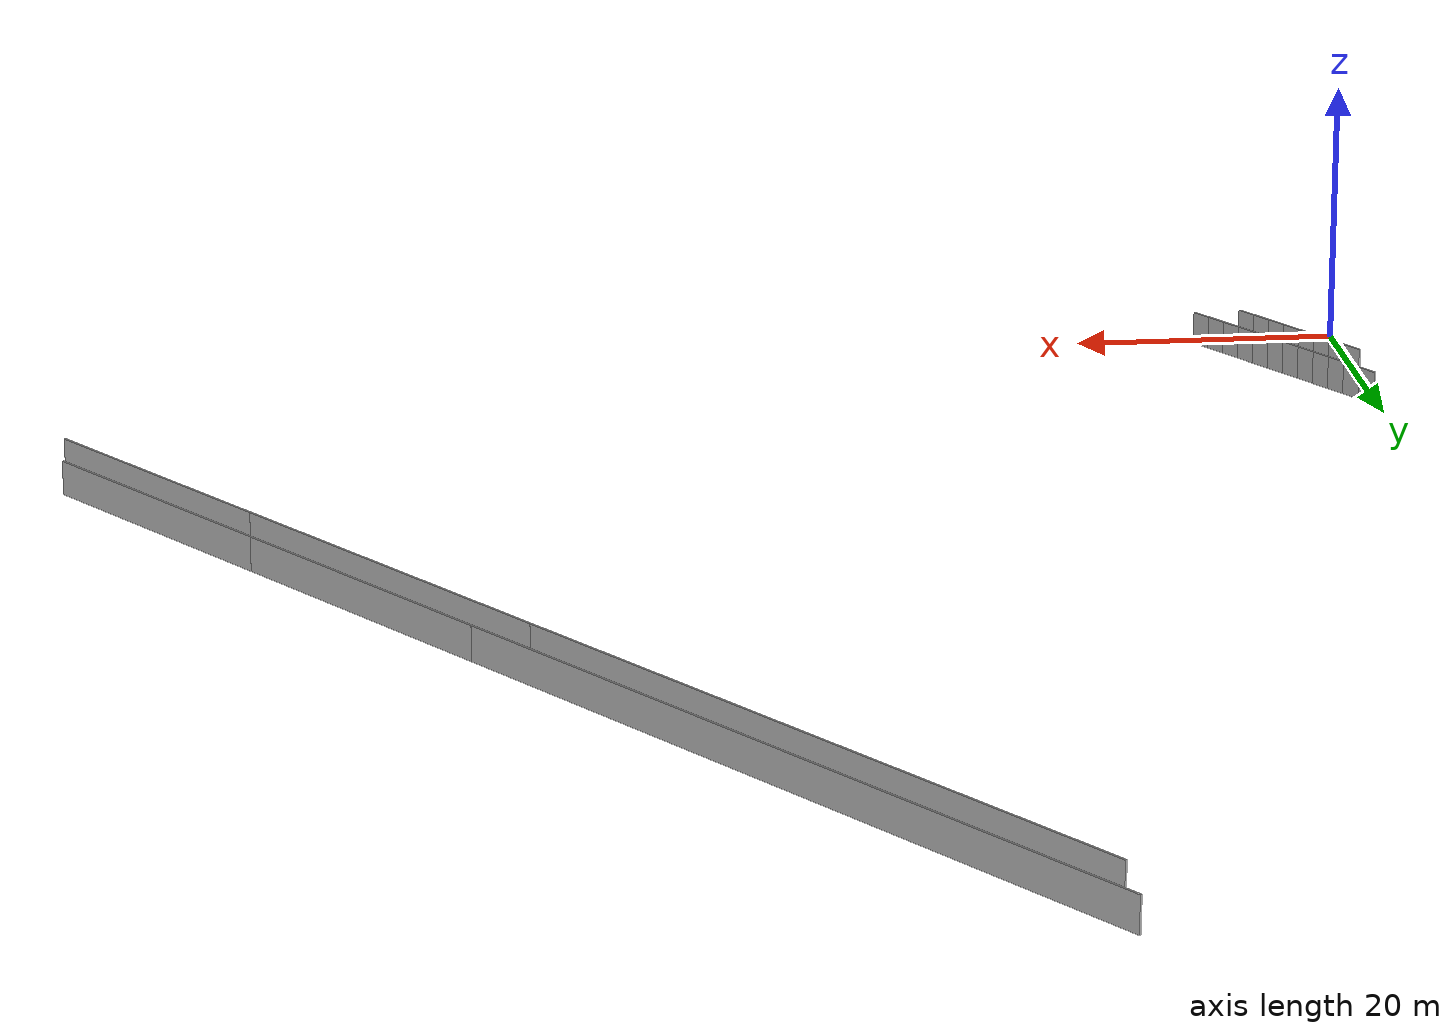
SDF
<?xml version="1.0" ?>
<sdf version="1.6">
  <model name="sps_2413">
    <pose frame="">0 0 0 0 -0 0</pose>
    <static>1</static>
    <self_collide>0</self_collide>
    <allow_auto_disable>0</allow_auto_disable>
    <link name="Wall163">
      <kinematic>0</kinematic>
      <gravity>1</gravity>
      <self_collide>0</self_collide>
      <collision name="collision">
        <geometry>
          <box>
            <size>22.4065 0.15 2.5</size>
          </box>
        </geometry>
        <pose frame="">0 0 0 0 -0 0</pose>
      </collision>
      <visual name="visual">
        <geometry>
          <box>
            <size>22.4065 0.15 2.5</size>
          </box>
        </geometry>
        <pose frame="">0 0 0 0 -0 0</pose>
        <cast_shadows>1</cast_shadows>
        <transparency>0.0</transparency>
      </visual>
      <pose frame="">91.0706 34.1579 1.25 0 -0 2.20088</pose>
    </link>
    <link name="Wall164">
      <kinematic>0</kinematic>
      <gravity>1</gravity>
      <self_collide>0</self_collide>
      <collision name="collision">
        <geometry>
          <box>
            <size>30.5494 0.15 2.5</size>
          </box>
        </geometry>
        <pose frame="">0 0 0 0 -0 0</pose>
      </collision>
      <visual name="visual">
        <geometry>
          <box>
            <size>30.5494 0.15 2.5</size>
          </box>
        </geometry>
        <pose frame="">0 0 0 0 -0 0</pose>
        <cast_shadows>1</cast_shadows>
        <transparency>0.0</transparency>
      </visual>
      <pose frame="">75.4694 55.5515 1.25 0 -0 2.20088</pose>
    </link>
    <link name="Wall165">
      <kinematic>0</kinematic>
      <gravity>1</gravity>
      <self_collide>0</self_collide>
      <collision name="collision">
        <geometry>
          <box>
            <size>54.3097 0.15 2.5</size>
          </box>
        </geometry>
        <pose frame="">0 0 0 0 -0 0</pose>
      </collision>
      <visual name="visual">
        <geometry>
          <box>
            <size>54.3097 0.15 2.5</size>
          </box>
        </geometry>
        <pose frame="">0 0 0 0 -0 0</pose>
        <cast_shadows>1</cast_shadows>
        <transparency>0.0</transparency>
      </visual>
      <pose frame="">50.4694 89.8336 1.25 0 -0 2.20088</pose>
    </link>
    <link name="Wall396">
      <kinematic>0</kinematic>
      <gravity>1</gravity>
      <self_collide>0</self_collide>
      <collision name="collision">
        <geometry>
          <box>
            <size>22.4065 0.15 2.5</size>
          </box>
        </geometry>
        <pose frame="">0 0 0 0 -0 0</pose>
      </collision>
      <visual name="visual">
        <geometry>
          <box>
            <size>22.4065 0.15 2.5</size>
          </box>
        </geometry>
        <pose frame="">0 0 0 0 -0 0</pose>
        <cast_shadows>1</cast_shadows>
        <transparency>0.0</transparency>
      </visual>
      <pose frame="">91.0706 39.4191 1.25 0 -0 2.20088</pose>
    </link>
    <link name="Wall397">
      <kinematic>0</kinematic>
      <gravity>1</gravity>
      <self_collide>0</self_collide>
      <collision name="collision">
        <geometry>
          <box>
            <size>24.0377 0.15 2.5</size>
          </box>
        </geometry>
        <pose frame="">0 0 0 0 -0 0</pose>
      </collision>
      <visual name="visual">
        <geometry>
          <box>
            <size>24.0377 0.15 2.5</size>
          </box>
        </geometry>
        <pose frame="">0 0 0 0 -0 0</pose>
        <cast_shadows>1</cast_shadows>
        <transparency>0.0</transparency>
      </visual>
      <pose frame="">77.3878 58.1821 1.25 0 -0 2.20088</pose>
    </link>
    <link name="Wall398">
      <kinematic>0</kinematic>
      <gravity>1</gravity>
      <self_collide>0</self_collide>
      <collision name="collision">
        <geometry>
          <box>
            <size>60.8213 0.15 2.5</size>
          </box>
        </geometry>
        <pose frame="">0 0 0 0 -0 0</pose>
      </collision>
      <visual name="visual">
        <geometry>
          <box>
            <size>60.8213 0.15 2.5</size>
          </box>
        </geometry>
        <pose frame="">0 0 0 0 -0 0</pose>
        <cast_shadows>1</cast_shadows>
        <transparency>0.0</transparency>
      </visual>
      <pose frame="">52.3878 92.4642 1.25 0 -0 2.20088</pose>
    </link>
    <link name="Wall6530">
      <kinematic>0</kinematic>
      <gravity>1</gravity>
      <self_collide>0</self_collide>
      <collision name="collision">
        <geometry>
          <box>
            <size>1.68624 0.15 2.5</size>
          </box>
        </geometry>
        <pose frame="">0 0 0 0 -0 0</pose>
      </collision>
      <visual name="visual">
        <geometry>
          <box>
            <size>1.68624 0.15 2.5</size>
          </box>
        </geometry>
        <pose frame="">0 0 0 0 -0 0</pose>
        <cast_shadows>1</cast_shadows>
        <transparency>0.0</transparency>
      </visual>
      <pose frame="">0.605552 10.9577 1.25 0 0 -1.01631</pose>
    </link>
    <link name="Wall6531">
      <kinematic>0</kinematic>
      <gravity>1</gravity>
      <self_collide>0</self_collide>
      <collision name="collision">
        <geometry>
          <box>
            <size>1.68605 0.15 2.5</size>
          </box>
        </geometry>
        <pose frame="">0 0 0 0 -0 0</pose>
      </collision>
      <visual name="visual">
        <geometry>
          <box>
            <size>1.68605 0.15 2.5</size>
          </box>
        </geometry>
        <pose frame="">0 0 0 0 -0 0</pose>
        <cast_shadows>1</cast_shadows>
        <transparency>0.0</transparency>
      </visual>
      <pose frame="">1.49447 9.52492 1.25 0 0 -1.01471</pose>
    </link>
    <link name="Wall6532">
      <kinematic>0</kinematic>
      <gravity>1</gravity>
      <self_collide>0</self_collide>
      <collision name="collision">
        <geometry>
          <box>
            <size>1.68621 0.15 2.5</size>
          </box>
        </geometry>
        <pose frame="">0 0 0 0 -0 0</pose>
      </collision>
      <visual name="visual">
        <geometry>
          <box>
            <size>1.68621 0.15 2.5</size>
          </box>
        </geometry>
        <pose frame="">0 0 0 0 -0 0</pose>
        <cast_shadows>1</cast_shadows>
        <transparency>0.0</transparency>
      </visual>
      <pose frame="">2.38576 8.09361 1.25 0 0 -1.01298</pose>
    </link>
    <link name="Wall6533">
      <kinematic>0</kinematic>
      <gravity>1</gravity>
      <self_collide>0</self_collide>
      <collision name="collision">
        <geometry>
          <box>
            <size>1.68632 0.15 2.5</size>
          </box>
        </geometry>
        <pose frame="">0 0 0 0 -0 0</pose>
      </collision>
      <visual name="visual">
        <geometry>
          <box>
            <size>1.68632 0.15 2.5</size>
          </box>
        </geometry>
        <pose frame="">0 0 0 0 -0 0</pose>
        <cast_shadows>1</cast_shadows>
        <transparency>0.0</transparency>
      </visual>
      <pose frame="">3.27956 6.66371 1.25 0 0 -1.01131</pose>
    </link>
    <link name="Wall6534">
      <kinematic>0</kinematic>
      <gravity>1</gravity>
      <self_collide>0</self_collide>
      <collision name="collision">
        <geometry>
          <box>
            <size>1.68624 0.15 2.5</size>
          </box>
        </geometry>
        <pose frame="">0 0 0 0 -0 0</pose>
      </collision>
      <visual name="visual">
        <geometry>
          <box>
            <size>1.68624 0.15 2.5</size>
          </box>
        </geometry>
        <pose frame="">0 0 0 0 -0 0</pose>
        <cast_shadows>1</cast_shadows>
        <transparency>0.0</transparency>
      </visual>
      <pose frame="">4.17577 5.2353 1.25 0 0 -1.00961</pose>
    </link>
    <link name="Wall6535">
      <kinematic>0</kinematic>
      <gravity>1</gravity>
      <self_collide>0</self_collide>
      <collision name="collision">
        <geometry>
          <box>
            <size>1.68617 0.15 2.5</size>
          </box>
        </geometry>
        <pose frame="">0 0 0 0 -0 0</pose>
      </collision>
      <visual name="visual">
        <geometry>
          <box>
            <size>1.68617 0.15 2.5</size>
          </box>
        </geometry>
        <pose frame="">0 0 0 0 -0 0</pose>
        <cast_shadows>1</cast_shadows>
        <transparency>0.0</transparency>
      </visual>
      <pose frame="">5.07436 3.80849 1.25 0 0 -1.00791</pose>
    </link>
    <link name="Wall6536">
      <kinematic>0</kinematic>
      <gravity>1</gravity>
      <self_collide>0</self_collide>
      <collision name="collision">
        <geometry>
          <box>
            <size>1.68623 0.15 2.5</size>
          </box>
        </geometry>
        <pose frame="">0 0 0 0 -0 0</pose>
      </collision>
      <visual name="visual">
        <geometry>
          <box>
            <size>1.68623 0.15 2.5</size>
          </box>
        </geometry>
        <pose frame="">0 0 0 0 -0 0</pose>
        <cast_shadows>1</cast_shadows>
        <transparency>0.0</transparency>
      </visual>
      <pose frame="">5.97536 2.38319 1.25 0 0 -1.00623</pose>
    </link>
    <link name="Wall6537">
      <kinematic>0</kinematic>
      <gravity>1</gravity>
      <self_collide>0</self_collide>
      <collision name="collision">
        <geometry>
          <box>
            <size>1.68609 0.15 2.5</size>
          </box>
        </geometry>
        <pose frame="">0 0 0 0 -0 0</pose>
      </collision>
      <visual name="visual">
        <geometry>
          <box>
            <size>1.68609 0.15 2.5</size>
          </box>
        </geometry>
        <pose frame="">0 0 0 0 -0 0</pose>
        <cast_shadows>1</cast_shadows>
        <transparency>0.0</transparency>
      </visual>
      <pose frame="">6.87865 0.959395 1.25 0 0 -1.00467</pose>
    </link>
    <link name="Wall9283">
      <kinematic>0</kinematic>
      <gravity>1</gravity>
      <self_collide>0</self_collide>
      <collision name="collision">
        <geometry>
          <box>
            <size>1.68079 0.15 2.5</size>
          </box>
        </geometry>
        <pose frame="">0 0 0 0 -0 0</pose>
      </collision>
      <visual name="visual">
        <geometry>
          <box>
            <size>1.68079 0.15 2.5</size>
          </box>
        </geometry>
        <pose frame="">0 0 0 0 -0 0</pose>
        <cast_shadows>1</cast_shadows>
        <transparency>0.0</transparency>
      </visual>
      <pose frame="">10.482 1.25838 1.25 0 -0 2.13866</pose>
    </link>
    <link name="Wall9284">
      <kinematic>0</kinematic>
      <gravity>1</gravity>
      <self_collide>0</self_collide>
      <collision name="collision">
        <geometry>
          <box>
            <size>1.6808 0.15 2.5</size>
          </box>
        </geometry>
        <pose frame="">0 0 0 0 -0 0</pose>
      </collision>
      <visual name="visual">
        <geometry>
          <box>
            <size>1.6808 0.15 2.5</size>
          </box>
        </geometry>
        <pose frame="">0 0 0 0 -0 0</pose>
        <cast_shadows>1</cast_shadows>
        <transparency>0.0</transparency>
      </visual>
      <pose frame="">9.57915 2.67607 1.25 0 -0 2.13711</pose>
    </link>
    <link name="Wall9285">
      <kinematic>0</kinematic>
      <gravity>1</gravity>
      <self_collide>0</self_collide>
      <collision name="collision">
        <geometry>
          <box>
            <size>1.68082 0.15 2.5</size>
          </box>
        </geometry>
        <pose frame="">0 0 0 0 -0 0</pose>
      </collision>
      <visual name="visual">
        <geometry>
          <box>
            <size>1.68082 0.15 2.5</size>
          </box>
        </geometry>
        <pose frame="">0 0 0 0 -0 0</pose>
        <cast_shadows>1</cast_shadows>
        <transparency>0.0</transparency>
      </visual>
      <pose frame="">8.67864 4.09529 1.25 0 -0 2.1353</pose>
    </link>
    <link name="Wall9286">
      <kinematic>0</kinematic>
      <gravity>1</gravity>
      <self_collide>0</self_collide>
      <collision name="collision">
        <geometry>
          <box>
            <size>1.6809 0.15 2.5</size>
          </box>
        </geometry>
        <pose frame="">0 0 0 0 -0 0</pose>
      </collision>
      <visual name="visual">
        <geometry>
          <box>
            <size>1.6809 0.15 2.5</size>
          </box>
        </geometry>
        <pose frame="">0 0 0 0 -0 0</pose>
        <cast_shadows>1</cast_shadows>
        <transparency>0.0</transparency>
      </visual>
      <pose frame="">7.78054 5.5161 1.25 0 -0 2.13368</pose>
    </link>
    <link name="Wall9287">
      <kinematic>0</kinematic>
      <gravity>1</gravity>
      <self_collide>0</self_collide>
      <collision name="collision">
        <geometry>
          <box>
            <size>1.68077 0.15 2.5</size>
          </box>
        </geometry>
        <pose frame="">0 0 0 0 -0 0</pose>
      </collision>
      <visual name="visual">
        <geometry>
          <box>
            <size>1.68077 0.15 2.5</size>
          </box>
        </geometry>
        <pose frame="">0 0 0 0 -0 0</pose>
        <cast_shadows>1</cast_shadows>
        <transparency>0.0</transparency>
      </visual>
      <pose frame="">6.88485 6.9384 1.25 0 -0 2.13192</pose>
    </link>
    <link name="Wall9288">
      <kinematic>0</kinematic>
      <gravity>1</gravity>
      <self_collide>0</self_collide>
      <collision name="collision">
        <geometry>
          <box>
            <size>1.68074 0.15 2.5</size>
          </box>
        </geometry>
        <pose frame="">0 0 0 0 -0 0</pose>
      </collision>
      <visual name="visual">
        <geometry>
          <box>
            <size>1.68074 0.15 2.5</size>
          </box>
        </geometry>
        <pose frame="">0 0 0 0 -0 0</pose>
        <cast_shadows>1</cast_shadows>
        <transparency>0.0</transparency>
      </visual>
      <pose frame="">5.99154 8.36211 1.25 0 -0 2.13039</pose>
    </link>
    <link name="Wall9289">
      <kinematic>0</kinematic>
      <gravity>1</gravity>
      <self_collide>0</self_collide>
      <collision name="collision">
        <geometry>
          <box>
            <size>1.68075 0.15 2.5</size>
          </box>
        </geometry>
        <pose frame="">0 0 0 0 -0 0</pose>
      </collision>
      <visual name="visual">
        <geometry>
          <box>
            <size>1.68075 0.15 2.5</size>
          </box>
        </geometry>
        <pose frame="">0 0 0 0 -0 0</pose>
        <cast_shadows>1</cast_shadows>
        <transparency>0.0</transparency>
      </visual>
      <pose frame="">5.10064 9.78731 1.25 0 -0 2.12855</pose>
    </link>
    <link name="Wall9290">
      <kinematic>0</kinematic>
      <gravity>1</gravity>
      <self_collide>0</self_collide>
      <collision name="collision">
        <geometry>
          <box>
            <size>1.68079 0.15 2.5</size>
          </box>
        </geometry>
        <pose frame="">0 0 0 0 -0 0</pose>
      </collision>
      <visual name="visual">
        <geometry>
          <box>
            <size>1.68079 0.15 2.5</size>
          </box>
        </geometry>
        <pose frame="">0 0 0 0 -0 0</pose>
        <cast_shadows>1</cast_shadows>
        <transparency>0.0</transparency>
      </visual>
      <pose frame="">4.21224 11.2141 1.25 0 -0 2.12687</pose>
    </link>
    <link name="Wall9291">
      <kinematic>0</kinematic>
      <gravity>1</gravity>
      <self_collide>0</self_collide>
      <collision name="collision">
        <geometry>
          <box>
            <size>1.68087 0.15 2.5</size>
          </box>
        </geometry>
        <pose frame="">0 0 0 0 -0 0</pose>
      </collision>
      <visual name="visual">
        <geometry>
          <box>
            <size>1.68087 0.15 2.5</size>
          </box>
        </geometry>
        <pose frame="">0 0 0 0 -0 0</pose>
        <cast_shadows>1</cast_shadows>
        <transparency>0.0</transparency>
      </visual>
      <pose frame="">3.32613 12.6424 1.25 0 -0 2.1253</pose>
    </link>
    <link name="Wall9292">
      <kinematic>0</kinematic>
      <gravity>1</gravity>
      <self_collide>0</self_collide>
      <collision name="collision">
        <geometry>
          <box>
            <size>1.68069 0.15 2.5</size>
          </box>
        </geometry>
        <pose frame="">0 0 0 0 -0 0</pose>
      </collision>
      <visual name="visual">
        <geometry>
          <box>
            <size>1.68069 0.15 2.5</size>
          </box>
        </geometry>
        <pose frame="">0 0 0 0 -0 0</pose>
        <cast_shadows>1</cast_shadows>
        <transparency>0.0</transparency>
      </visual>
      <pose frame="">2.44244 14.0721 1.25 0 -0 2.12353</pose>
    </link>
    <link name="Wall9293">
      <kinematic>0</kinematic>
      <gravity>1</gravity>
      <self_collide>0</self_collide>
      <collision name="collision">
        <geometry>
          <box>
            <size>1.68059 0.15 2.5</size>
          </box>
        </geometry>
        <pose frame="">0 0 0 0 -0 0</pose>
      </collision>
      <visual name="visual">
        <geometry>
          <box>
            <size>1.68059 0.15 2.5</size>
          </box>
        </geometry>
        <pose frame="">0 0 0 0 -0 0</pose>
        <cast_shadows>1</cast_shadows>
        <transparency>0.0</transparency>
      </visual>
      <pose frame="">1.56094 15.503 1.25 0 -0 2.12233</pose>
    </link>
    <link name="Wall9294">
      <kinematic>0</kinematic>
      <gravity>1</gravity>
      <self_collide>0</self_collide>
      <collision name="collision">
        <geometry>
          <box>
            <size>1.68087 0.15 2.5</size>
          </box>
        </geometry>
        <pose frame="">0 0 0 0 -0 0</pose>
      </collision>
      <visual name="visual">
        <geometry>
          <box>
            <size>1.68087 0.15 2.5</size>
          </box>
        </geometry>
        <pose frame="">0 0 0 0 -0 0</pose>
        <cast_shadows>1</cast_shadows>
        <transparency>0.0</transparency>
      </visual>
      <pose frame="">0.681846 16.9355 1.25 0 -0 2.1201</pose>
    </link>
  </model>
</sdf>
